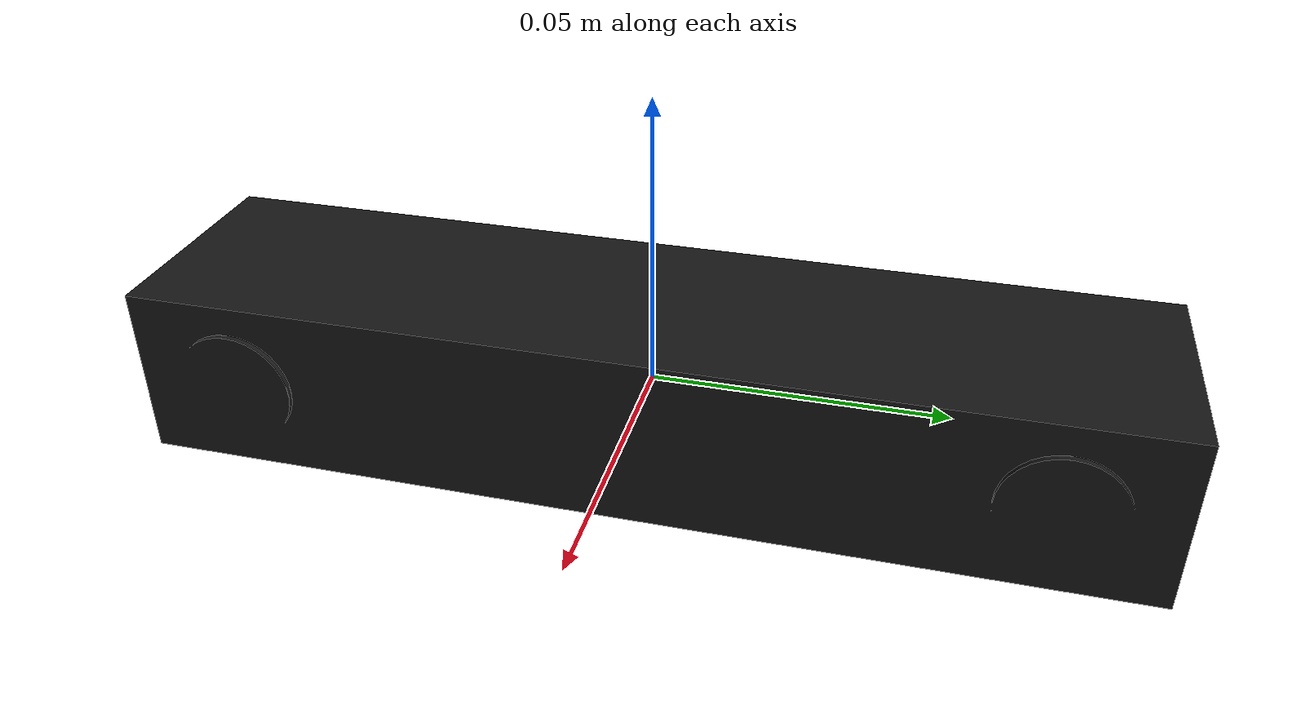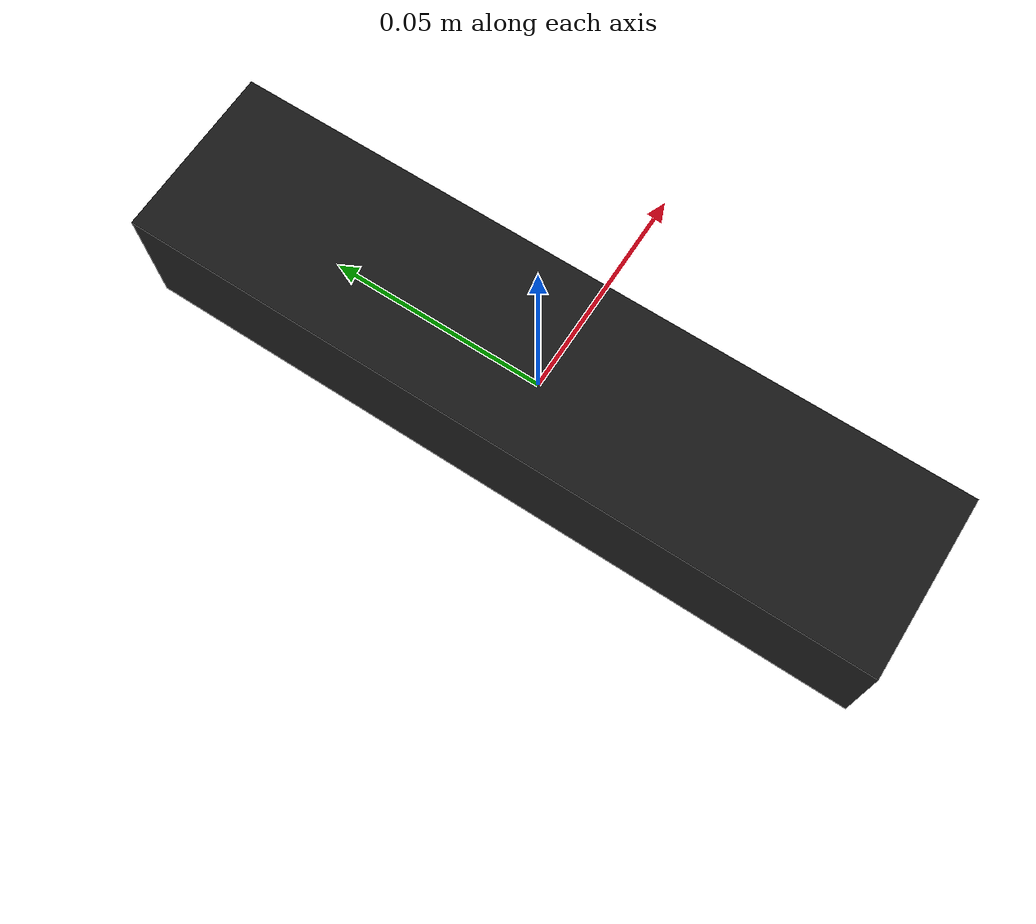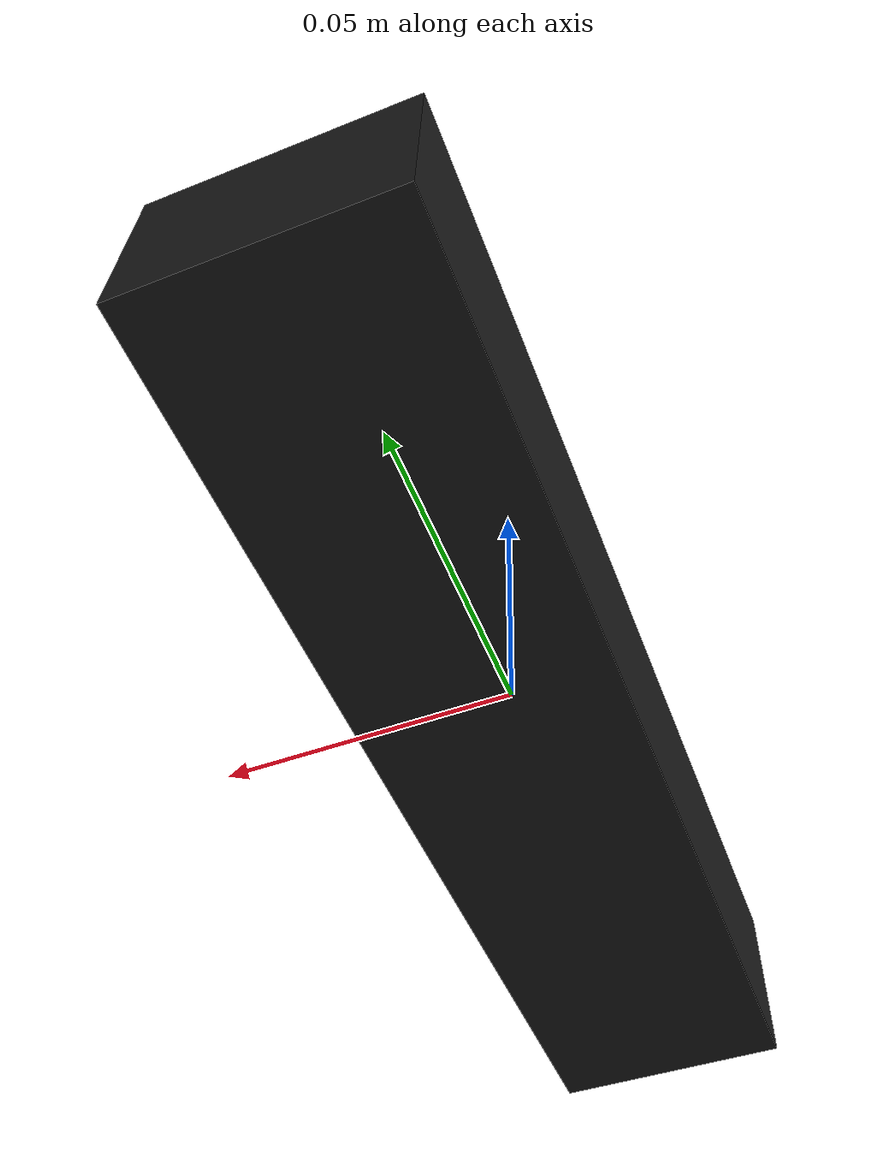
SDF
<?xml version="1.0" ?>
<sdf version="1.8">
  <model name="depth_camera">
    <pose>0 0 0 0 0 0</pose>

    <link name="base_link">
      <inertial>
        <mass>0.15</mass>
        <inertia>
          <ixx>0.00001</ixx>
          <ixy>0</ixy>
          <ixz>0</ixz>
          <iyy>0.00001</iyy>
          <iyz>0</iyz>
          <izz>0.00001</izz>
        </inertia>
        <pose>0 0 0 0 0 0</pose>
      </inertial>

      <collision name="collision">
        <geometry>
          <box>
            <size>0.025 0.09 0.025</size>
          </box>
        </geometry>
      </collision>

      <visual name="visual">
        <geometry>
          <mesh>
            <uri>model://depth_camera/meshes/depth_camera.dae</uri>
            <scale>1 1 1</scale>
          </mesh>
        </geometry>
        <material>
          <ambient>0.1 0.1 0.1 1.0</ambient>
          <diffuse>0.1 0.1 0.1 1.0</diffuse>
          <specular>0.01 0.01 0.01 1.0</specular>
        </material>
      </visual>

      <!-- Depth camera sensor -->
      <sensor name="depth_camera_sensor" type="depth_camera">
        <pose>0 0 0 0 0 0</pose>
        <topic>depth</topic>
        <update_rate>30</update_rate>
        <camera>
          <horizontal_fov>1.047</horizontal_fov>
          <image>
            <width>640</width>
            <height>480</height>
            <format>R8G8B8</format>
          </image>
          <clip>
            <near>0.1</near>
            <far>10.0</far>
          </clip>
          <noise>
            <type>gaussian</type>
            <mean>0.0</mean>
            <stddev>0.007</stddev>
          </noise>
          <lens>
            <type>gnomonical</type>
            <scale_to_hfov>true</scale_to_hfov>
            <cutoff_angle>1.5707</cutoff_angle>
            <env_texture_size>256</env_texture_size>
          </lens>
        </camera>
        <depth_camera>
          <output>depths</output>
          <clip>
            <near>0.1</near>
            <far>10.0</far>
          </clip>
        </depth_camera>
        <visualize>true</visualize>
        <always_on>true</always_on>
      </sensor>

      <!-- RGB camera sensor (for RGBD) -->
      <sensor name="rgb_camera_sensor" type="camera">
        <pose>0 0 0 0 0 0</pose>
        <topic>rgb</topic>
        <update_rate>30</update_rate>
        <camera>
          <horizontal_fov>1.047</horizontal_fov>
          <image>
            <width>640</width>
            <height>480</height>
            <format>R8G8B8</format>
          </image>
          <clip>
            <near>0.1</near>
            <far>100</far>
          </clip>
          <noise>
            <type>gaussian</type>
            <mean>0.0</mean>
            <stddev>0.007</stddev>
          </noise>
          <lens>
            <type>gnomonical</type>
            <scale_to_hfov>true</scale_to_hfov>
            <cutoff_angle>1.5707</cutoff_angle>
            <env_texture_size>256</env_texture_size>
          </lens>
        </camera>
        <visualize>true</visualize>
        <always_on>true</always_on>
      </sensor>
    </link>

    <!-- ROS2 bridge plugin for depth camera -->
    <plugin
      filename="ignition-gazebo-ros-depth-camera-system"
      name="ignition::gazebo::systems::RosDepthCamera">
      <namespace>sensors</namespace>
      <topic>depth</topic>
      <frame_id>depth_camera_link</frame_id>
      <point_cloud_cutoff>0.1</point_cloud_cutoff>
    </plugin>

    <!-- ROS2 bridge plugin for RGB camera -->
    <plugin
      filename="ignition-gazebo-ros-camera-system"
      name="ignition::gazebo::systems::RosCamera">
      <namespace>sensors</namespace>
      <topic>rgb</topic>
      <frame_id>depth_camera_link</frame_id>
    </plugin>
  </model>
</sdf>
